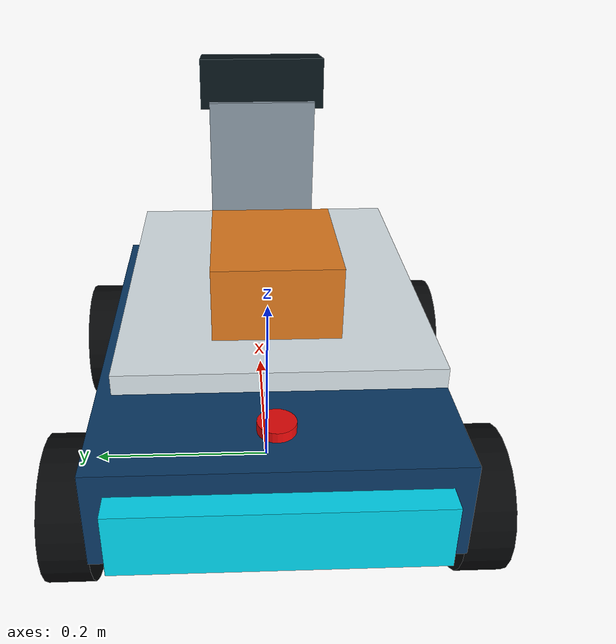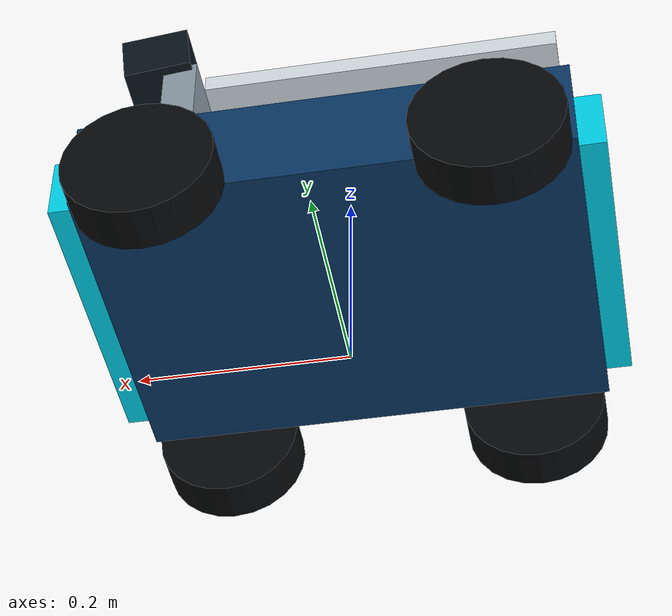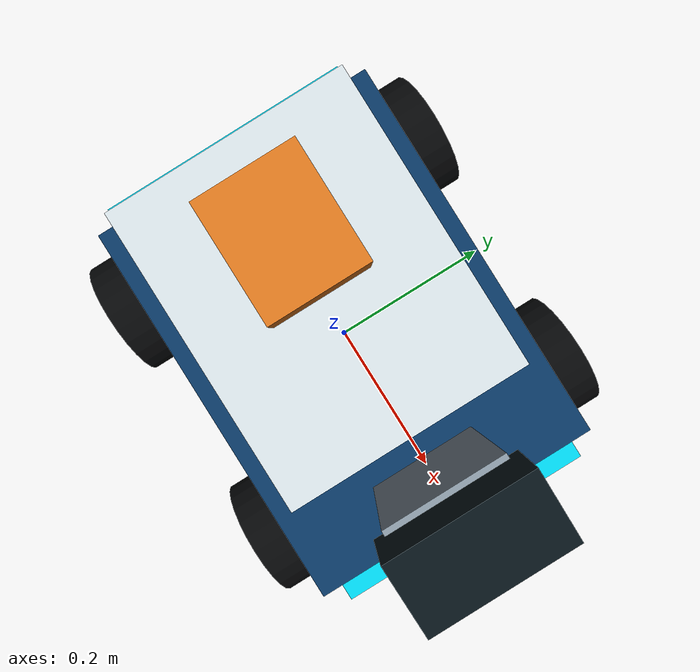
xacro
<?xml version="1.0"?>
<robot xmlns:xacro="http://www.ros.org/wiki/xacro" name="autonomous_robot_car">

  <xacro:property name="arc_pi" value="3.141592653589793"/>
  <xacro:property name="wheel_radius" value="0.070"/>
  <xacro:property name="wheel_width" value="0.045"/>
  <xacro:property name="wheel_x" value="0.155"/>
  <xacro:property name="wheel_y" value="0.1925"/>

  <material name="body_blue"><color rgba="0.035 0.22 0.40 1"/></material>
  <material name="accent_cyan"><color rgba="0.0 0.85 0.95 1"/></material>
  <material name="rubber"><color rgba="0.025 0.03 0.035 1"/></material>
  <material name="metal"><color rgba="0.55 0.61 0.66 1"/></material>
  <material name="tray"><color rgba="0.86 0.90 0.92 1"/></material>
  <material name="parcel"><color rgba="0.88 0.48 0.12 1"/></material>
  <material name="glass"><color rgba="0.03 0.08 0.10 1"/></material>
  <material name="red"><color rgba="0.9 0.03 0.03 1"/></material>

  <xacro:macro name="box_inertial" params="mass x y z">
    <inertial>
      <mass value="${mass}"/>
      <inertia
        ixx="${mass * (y*y + z*z) / 12.0}" ixy="0" ixz="0"
        iyy="${mass * (x*x + z*z) / 12.0}" iyz="0"
        izz="${mass * (x*x + y*y) / 12.0}"/>
    </inertial>
  </xacro:macro>

  <xacro:macro name="wheel" params="prefix x y">
    <link name="${prefix}_wheel_link">
      <visual>
        <origin rpy="${arc_pi/2} 0 0"/>
        <geometry><cylinder radius="${wheel_radius}" length="${wheel_width}"/></geometry>
        <material name="rubber"/>
      </visual>
      <collision>
        <origin rpy="${arc_pi/2} 0 0"/>
        <geometry><cylinder radius="${wheel_radius}" length="${wheel_width}"/></geometry>
      </collision>
      <inertial>
        <origin rpy="${arc_pi/2} 0 0"/>
        <mass value="0.18"/>
        <inertia ixx="0.00050" ixy="0" ixz="0" iyy="0.00050" iyz="0" izz="0.00018"/>
      </inertial>
    </link>
    <joint name="${prefix}_wheel_joint" type="continuous">
      <parent link="base_link"/>
      <child link="${prefix}_wheel_link"/>
      <origin xyz="${x} ${y} -0.05"/>
      <axis xyz="0 1 0"/>
      <dynamics damping="0.02" friction="0.01"/>
    </joint>
    <gazebo reference="${prefix}_wheel_link">
      <mu1>1.2</mu1>
      <mu2>1.2</mu2>
      <kp>1000000.0</kp>
      <kd>10.0</kd>
      <material>Gazebo/Black</material>
    </gazebo>
  </xacro:macro>

  <!-- REP-105 ground projection. Wheel contact is at z=0. -->
  <link name="base_footprint"/>
  <joint name="base_footprint_joint" type="fixed">
    <parent link="base_footprint"/>
    <child link="base_link"/>
    <origin xyz="0 0 0.12"/>
  </joint>

  <link name="base_link">
    <visual>
      <geometry><box size="0.46 0.34 0.10"/></geometry>
      <material name="body_blue"/>
    </visual>
    <collision>
      <geometry><box size="0.46 0.34 0.10"/></geometry>
    </collision>
    <xacro:box_inertial mass="3.0" x="0.46" y="0.34" z="0.10"/>
  </link>

  <link name="front_bumper_link">
    <visual>
      <geometry><box size="0.025 0.30 0.065"/></geometry>
      <material name="accent_cyan"/>
    </visual>
    <collision><geometry><box size="0.025 0.30 0.065"/></geometry></collision>
    <xacro:box_inertial mass="0.08" x="0.025" y="0.30" z="0.065"/>
  </link>
  <joint name="front_bumper_joint" type="fixed">
    <parent link="base_link"/>
    <child link="front_bumper_link"/>
    <origin xyz="0.2425 0 -0.005"/>
  </joint>

  <link name="rear_bumper_link">
    <visual>
      <geometry><box size="0.025 0.30 0.065"/></geometry>
      <material name="accent_cyan"/>
    </visual>
    <collision><geometry><box size="0.025 0.30 0.065"/></geometry></collision>
    <xacro:box_inertial mass="0.08" x="0.025" y="0.30" z="0.065"/>
  </link>
  <joint name="rear_bumper_joint" type="fixed">
    <parent link="base_link"/>
    <child link="rear_bumper_link"/>
    <origin xyz="-0.2425 0 -0.005"/>
  </joint>

  <xacro:wheel prefix="front_left" x="${wheel_x}" y="${wheel_y}"/>
  <xacro:wheel prefix="front_right" x="${wheel_x}" y="${-wheel_y}"/>
  <xacro:wheel prefix="rear_left" x="${-wheel_x}" y="${wheel_y}"/>
  <xacro:wheel prefix="rear_right" x="${-wheel_x}" y="${-wheel_y}"/>

  <!-- Delivery tray and removable 100 g reference payload. -->
  <link name="tray_pedestal_link">
    <visual><geometry><cylinder radius="0.055" length="0.075"/></geometry><material name="metal"/></visual>
    <collision><geometry><cylinder radius="0.055" length="0.075"/></geometry></collision>
    <inertial><mass value="0.15"/><inertia ixx="0.00012" ixy="0" ixz="0" iyy="0.00012" iyz="0" izz="0.00022"/></inertial>
  </link>
  <joint name="tray_pedestal_joint" type="fixed">
    <parent link="base_link"/>
    <child link="tray_pedestal_link"/>
    <origin xyz="-0.025 0 0.0875"/>
  </joint>

  <link name="delivery_tray_link">
    <visual><geometry><box size="0.34 0.27 0.018"/></geometry><material name="tray"/></visual>
    <collision><geometry><box size="0.34 0.27 0.018"/></geometry></collision>
    <xacro:box_inertial mass="0.24" x="0.34" y="0.27" z="0.018"/>
  </link>
  <joint name="delivery_tray_joint" type="fixed">
    <parent link="tray_pedestal_link"/>
    <child link="delivery_tray_link"/>
    <origin xyz="-0.025 0 0.0465"/>
  </joint>

  <link name="payload_100g_link">
    <visual><geometry><box size="0.13 0.11 0.065"/></geometry><material name="parcel"/></visual>
    <collision><geometry><box size="0.13 0.11 0.065"/></geometry></collision>
    <xacro:box_inertial mass="0.100" x="0.13" y="0.11" z="0.065"/>
  </link>
  <joint name="payload_100g_joint" type="fixed">
    <parent link="delivery_tray_link"/>
    <child link="payload_100g_link"/>
    <origin xyz="-0.055 0 0.0415"/>
  </joint>

  <!-- One top panoramic RGB-D pod: four internal views remove blind spots. -->
  <link name="camera_mount_link">
    <visual><geometry><box size="0.035 0.12 0.18"/></geometry><material name="metal"/></visual>
    <collision><geometry><box size="0.035 0.12 0.18"/></geometry></collision>
    <xacro:box_inertial mass="0.12" x="0.035" y="0.12" z="0.18"/>
  </link>
  <joint name="camera_mount_joint" type="fixed">
    <parent link="base_link"/>
    <child link="camera_mount_link"/>
    <origin xyz="0.17 0 0.17"/>
  </joint>

  <link name="camera_link">
    <visual><geometry><box size="0.07 0.14 0.055"/></geometry><material name="glass"/></visual>
    <collision><geometry><box size="0.07 0.14 0.055"/></geometry></collision>
    <xacro:box_inertial mass="0.16" x="0.07" y="0.14" z="0.055"/>
  </link>
  <joint name="camera_joint" type="fixed">
    <parent link="camera_mount_link"/>
    <child link="camera_link"/>
    <origin xyz="0.025 0 0.105" rpy="0 0.12 0"/>
  </joint>

  <link name="camera_optical_frame">
    <inertial><mass value="0.00001"/><inertia ixx="1e-9" ixy="0" ixz="0" iyy="1e-9" iyz="0" izz="1e-9"/></inertial>
  </link>
  <joint name="camera_optical_joint" type="fixed">
    <parent link="camera_link"/>
    <child link="camera_optical_frame"/>
    <origin xyz="0.037 0 0" rpy="${-arc_pi/2} 0 ${-arc_pi/2}"/>
  </joint>

  <link name="status_led_link">
    <visual><geometry><cylinder radius="0.018" length="0.010"/></geometry><material name="red"/></visual>
    <xacro:box_inertial mass="0.01" x="0.02" y="0.02" z="0.01"/>
  </link>
  <joint name="status_led_joint" type="fixed">
    <parent link="base_link"/>
    <child link="status_led_link"/>
    <origin xyz="-0.18 0 0.06"/>
  </joint>

  <gazebo reference="base_link"><material>Gazebo/DarkBlue</material></gazebo>
  <gazebo reference="delivery_tray_link"><material>Gazebo/White</material></gazebo>
  <gazebo reference="payload_100g_link"><material>Gazebo/Orange</material></gazebo>
  <gazebo reference="camera_joint"><preserveFixedJoint>true</preserveFixedJoint></gazebo>
  <gazebo reference="camera_optical_joint"><preserveFixedJoint>true</preserveFixedJoint></gazebo>

  <gazebo reference="camera_link">
    <sensor name="panoramic_front_rgbd" type="rgbd_camera">
      <always_on>true</always_on>
      <update_rate>10</update_rate>
      <visualize>false</visualize>
      <topic>/camera</topic>
      <camera>
        <horizontal_fov>1.74533</horizontal_fov>
        <image><width>320</width><height>180</height><format>R8G8B8</format>
        </image>

        <clip><near>0.12</near><far>8.0</far></clip>
        <depth_camera><output>depths</output></depth_camera>
        <optical_frame_id>camera_optical_frame</optical_frame_id>
      </camera>
    </sensor>
    <sensor name="panoramic_left_rgbd" type="rgbd_camera">
      <pose>0 0 0 0 0 1.570796</pose>
      <always_on>true</always_on><update_rate>10</update_rate><visualize>false</visualize>
      <topic>/camera/left</topic>
      <camera>
        <horizontal_fov>1.74533</horizontal_fov>
        <image><width>320</width><height>180</height><format>R8G8B8</format></image>
        <clip><near>0.12</near><far>8.0</far></clip>
        <depth_camera><output>depths</output></depth_camera>
      </camera>
    </sensor>
    <sensor name="panoramic_right_rgbd" type="rgbd_camera">
      <pose>0 0 0 0 0 -1.570796</pose>
      <always_on>true</always_on><update_rate>10</update_rate><visualize>false</visualize>
      <topic>/camera/right</topic>
      <camera>
        <horizontal_fov>1.74533</horizontal_fov>
        <image><width>320</width><height>180</height><format>R8G8B8</format></image>
        <clip><near>0.12</near><far>8.0</far></clip>
        <depth_camera><output>depths</output></depth_camera>
      </camera>
    </sensor>
    <sensor name="panoramic_rear_rgbd" type="rgbd_camera">
      <pose>0 0 0 0 0 3.141593</pose>
      <always_on>true</always_on><update_rate>10</update_rate><visualize>false</visualize>
      <topic>/camera/rear</topic>
      <camera>
        <horizontal_fov>1.74533</horizontal_fov>
        <image><width>320</width><height>180</height><format>R8G8B8</format></image>
        <clip><near>0.12</near><far>8.0</far></clip>
        <depth_camera><output>depths</output></depth_camera>
      </camera>
    </sensor>
  </gazebo>

  <gazebo>
    <plugin filename="gz-sim-diff-drive-system" name="gz::sim::systems::DiffDrive">
      <left_joint>front_left_wheel_joint</left_joint>
      <left_joint>rear_left_wheel_joint</left_joint>
      <right_joint>front_right_wheel_joint</right_joint>
      <right_joint>rear_right_wheel_joint</right_joint>
      <wheel_separation>${2.0 * wheel_y}</wheel_separation>
      <wheel_radius>${wheel_radius}</wheel_radius>
      <max_linear_acceleration>0.55</max_linear_acceleration>
      <min_linear_acceleration>-0.70</min_linear_acceleration>
      <max_angular_acceleration>1.8</max_angular_acceleration>
      <min_angular_acceleration>-1.8</min_angular_acceleration>
      <max_linear_velocity>0.45</max_linear_velocity>
      <min_linear_velocity>-0.20</min_linear_velocity>
      <max_angular_velocity>1.5</max_angular_velocity>
      <min_angular_velocity>-1.5</min_angular_velocity>
      <topic>/cmd_vel</topic>
      <odom_topic>/odom</odom_topic>
      <tf_topic>/tf</tf_topic>
      <frame_id>odom</frame_id>
      <child_frame_id>base_footprint</child_frame_id>
      <odom_publisher_frequency>30</odom_publisher_frequency>
    </plugin>
    <plugin filename="gz-sim-joint-state-publisher-system" name="gz::sim::systems::JointStatePublisher">
      <topic>/joint_states</topic>
      <joint_name>front_left_wheel_joint</joint_name>
      <joint_name>front_right_wheel_joint</joint_name>
      <joint_name>rear_left_wheel_joint</joint_name>
      <joint_name>rear_right_wheel_joint</joint_name>
    </plugin>
  </gazebo>

</robot>
